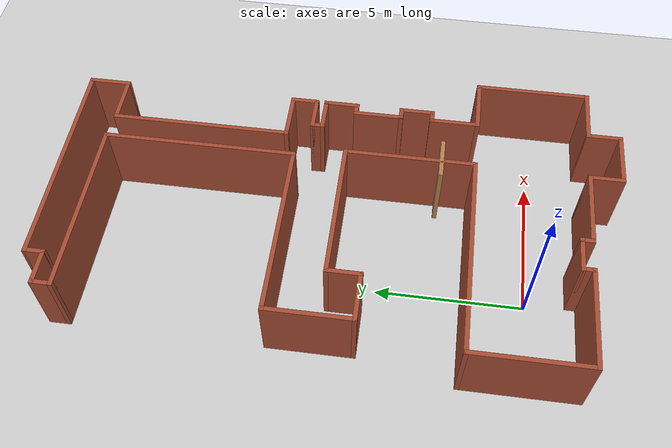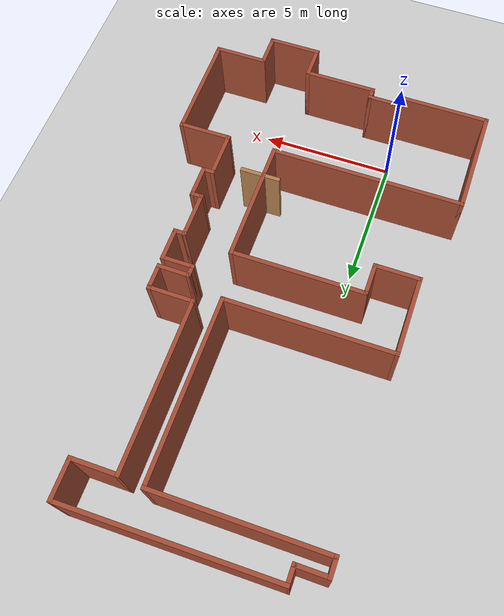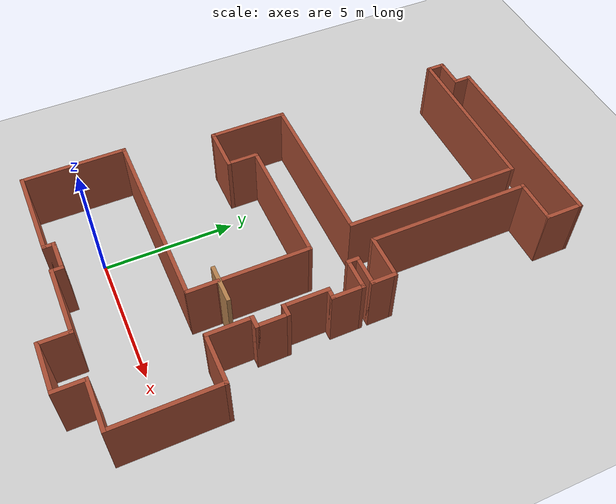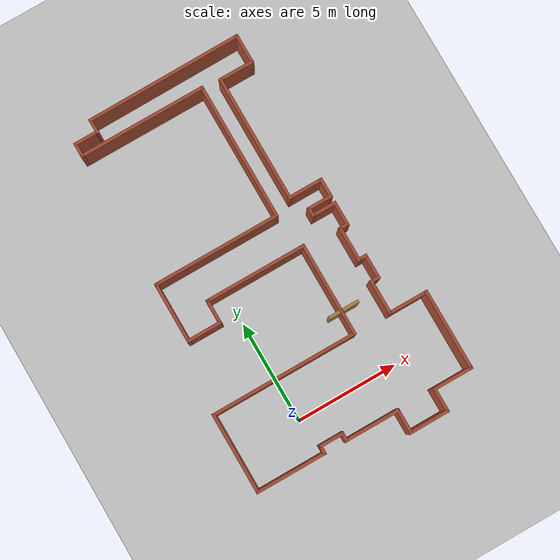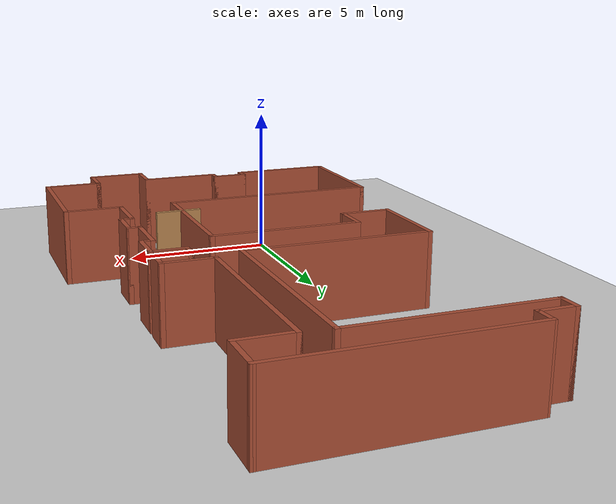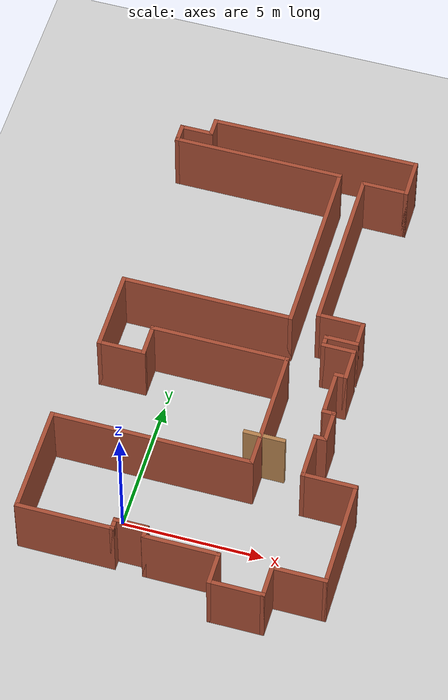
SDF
<sdf version="1.7">
 <world name="default">
  <light name="sun" type="directional">
   <pose>0 0 10 0 -0 0</pose>
   <diffuse>0.8 0.8 0.8 1</diffuse>
   <specular>0.2 0.2 0.2 1</specular>
   <attenuation>
    <range>1000</range>
    <constant>0.9</constant>
    <linear>0.01</linear>
    <quadratic>0.001</quadratic>
   </attenuation>
   <direction>-0.5 0.1 -0.9</direction>
   <spot><inner_angle>0</inner_angle><outer_angle>0</outer_angle><falloff>0</falloff></spot>
  </light>
  <model name="ground_plane">
   <static>1</static>
   <link name="link">
    <collision name="collision">
     <geometry><plane><normal>0 0 1</normal><size>100 100</size></plane></geometry>
     <surface><friction><ode><mu>100</mu><mu2>50</mu2></ode></friction></surface>
    </collision>
    <visual name="visual">
     <cast_shadows>0</cast_shadows>
     <geometry><plane><normal>0 0 1</normal><size>100 100</size></plane></geometry>
     <material>
      <script><uri>file://media/materials/scripts/gazebo.material</uri><name>Gazebo/Grey</name></script>
     </material>
    </visual>
   </link>
  </model>
  <gravity>0 0 -9.8</gravity>
  <magnetic_field>6e-06 2.3e-05 -4.2e-05</magnetic_field>
  <atmosphere type="adiabatic"/>
  <physics type="ode">
   <max_step_size>0.001</max_step_size>
   <real_time_factor>1</real_time_factor>
   <real_time_update_rate>1000</real_time_update_rate>
  </physics>
  <scene><ambient>0.4 0.4 0.4 1</ambient><background>0.7 0.7 0.7 1</background><shadows>1</shadows></scene>
  <spherical_coordinates>
   <surface_model>EARTH_WGS84</surface_model>
   <latitude_deg>0</latitude_deg>
   <longitude_deg>0</longitude_deg>
   <elevation>0</elevation>
   <heading_deg>0</heading_deg>
  </spherical_coordinates>
  <model name="F1L3">
   <pose>2.25201 6.62424 0 0 -0 0</pose>
   <link name="Wall_0">
    <collision name="Wall_0_Collision">
     <geometry><box><size>4 0.15 2.5</size></box></geometry>
     <pose>0 0 1.25 0 -0 0</pose>
    </collision>
    <visual name="Wall_0_Visual">
     <pose>0 0 1.25 0 -0 0</pose>
     <geometry><box><size>4 0.15 2.5</size></box></geometry>
     <material>
      <script><uri>file://media/materials/scripts/gazebo.material</uri><name>Gazebo/Bricks</name></script>
      <ambient>1 1 1 1</ambient>
     </material>
     <meta><layer>0</layer></meta>
    </visual>
    <pose>-5.375 -6.47525 0 0 -0 -1.5708</pose>
   </link>
   <link name="Wall_1">
    <collision name="Wall_1_Collision">
     <geometry><box><size>3.5 0.15 2.5</size></box></geometry>
     <pose>0 0 1.25 0 -0 0</pose>
    </collision>
    <visual name="Wall_1_Visual">
     <pose>0 0 1.25 0 -0 0</pose>
     <geometry><box><size>3.5 0.15 2.5</size></box></geometry>
     <material>
      <script><uri>file://media/materials/scripts/gazebo.material</uri><name>Gazebo/Bricks</name></script>
      <ambient>1 1 1 1</ambient>
     </material>
     <meta><layer>0</layer></meta>
    </visual>
    <pose>-3.7 -8.40025 0 0 -0 0</pose>
   </link>
   <link name="Wall_12">
    <collision name="Wall_12_Collision">
     <geometry><box><size>1.25 0.15 2.5</size></box></geometry>
     <pose>0 0 1.25 0 -0 0</pose>
    </collision>
    <visual name="Wall_12_Visual">
     <pose>0 0 1.25 0 -0 0</pose>
     <geometry><box><size>1.25 0.15 2.5</size></box></geometry>
     <material>
      <script><uri>file://media/materials/scripts/gazebo.material</uri><name>Gazebo/Bricks</name></script>
      <ambient>1 1 1 1</ambient>
     </material>
     <meta><layer>0</layer></meta>
    </visual>
    <pose>-1.475 -8.05025 0 0 -0 0</pose>
   </link>
   <link name="Wall_13">
    <collision name="Wall_13_Collision">
     <geometry><box><size>0.5 0.15 2.5</size></box></geometry>
     <pose>0 0 1.25 0 -0 0</pose>
    </collision>
    <visual name="Wall_13_Visual">
     <pose>0 0 1.25 0 -0 0</pose>
     <geometry><box><size>0.5 0.15 2.5</size></box></geometry>
     <material>
      <script><uri>file://media/materials/scripts/gazebo.material</uri><name>Gazebo/Bricks</name></script>
      <ambient>1 1 1 1</ambient>
     </material>
     <meta><layer>0</layer></meta>
    </visual>
    <pose>-0.925 -8.22525 0 0 -0 -1.5708</pose>
   </link>
   <link name="Wall_14">
    <collision name="Wall_14_Collision">
     <geometry><box><size>2.75 0.15 2.5</size></box></geometry>
     <pose>0 0 1.25 0 -0 0</pose>
    </collision>
    <visual name="Wall_14_Visual">
     <pose>0 0 1.25 0 -0 0</pose>
     <geometry><box><size>2.75 0.15 2.5</size></box></geometry>
     <material>
      <script><uri>file://media/materials/scripts/gazebo.material</uri><name>Gazebo/Bricks</name></script>
      <ambient>1 1 1 1</ambient>
     </material>
     <meta><layer>0</layer></meta>
    </visual>
    <pose>0.375 -8.40025 0 0 -0 0</pose>
   </link>
   <link name="Wall_15">
    <collision name="Wall_15_Collision">
     <geometry><box><size>1.25 0.15 2.5</size></box></geometry>
     <pose>0 0 1.25 0 -0 0</pose>
    </collision>
    <visual name="Wall_15_Visual">
     <pose>0 0 1.25 0 -0 0</pose>
     <geometry><box><size>1.25 0.15 2.5</size></box></geometry>
     <material>
      <script><uri>file://media/materials/scripts/gazebo.material</uri><name>Gazebo/Bricks</name></script>
      <ambient>1 1 1 1</ambient>
     </material>
     <meta><layer>0</layer></meta>
    </visual>
    <pose>1.675 -8.95025 0 0 -0 -1.5708</pose>
   </link>
   <link name="Wall_16">
    <collision name="Wall_16_Collision">
     <geometry><box><size>2 0.15 2.5</size></box></geometry>
     <pose>0 0 1.25 0 -0 0</pose>
    </collision>
    <visual name="Wall_16_Visual">
     <pose>0 0 1.25 0 -0 0</pose>
     <geometry><box><size>2 0.15 2.5</size></box></geometry>
     <material>
      <script><uri>file://media/materials/scripts/gazebo.material</uri><name>Gazebo/Bricks</name></script>
      <ambient>1 1 1 1</ambient>
     </material>
     <meta><layer>0</layer></meta>
    </visual>
    <pose>2.6 -9.50025 0 0 -0 0</pose>
   </link>
   <link name="Wall_17">
    <collision name="Wall_17_Collision">
     <geometry><box><size>1.25 0.15 2.5</size></box></geometry>
     <pose>0 0 1.25 0 -0 0</pose>
    </collision>
    <visual name="Wall_17_Visual">
     <pose>0 0 1.25 0 -0 0</pose>
     <geometry><box><size>1.25 0.15 2.5</size></box></geometry>
     <material>
      <script><uri>file://media/materials/scripts/gazebo.material</uri><name>Gazebo/Bricks</name></script>
      <ambient>1 1 1 1</ambient>
     </material>
     <meta><layer>0</layer></meta>
    </visual>
    <pose>3.525 -8.95025 0 0 -0 1.5708</pose>
   </link>
   <link name="Wall_18">
    <collision name="Wall_18_Collision">
     <geometry><box><size>2 0.15 2.5</size></box></geometry>
     <pose>0 0 1.25 0 -0 0</pose>
    </collision>
    <visual name="Wall_18_Visual">
     <pose>0 0 1.25 0 -0 0</pose>
     <geometry><box><size>2 0.15 2.5</size></box></geometry>
     <material>
      <script><uri>file://media/materials/scripts/gazebo.material</uri><name>Gazebo/Bricks</name></script>
      <ambient>1 1 1 1</ambient>
     </material>
     <meta><layer>0</layer></meta>
    </visual>
    <pose>4.45 -8.40025 0 0 -0 0</pose>
   </link>
   <link name="Wall_19">
    <collision name="Wall_19_Collision">
     <geometry><box><size>4 0.15 2.5</size></box></geometry>
     <pose>0 0 1.25 0 -0 0</pose>
    </collision>
    <visual name="Wall_19_Visual">
     <pose>0 0 1.25 0 -0 0</pose>
     <geometry><box><size>4 0.15 2.5</size></box></geometry>
     <material>
      <script><uri>file://media/materials/scripts/gazebo.material</uri><name>Gazebo/Bricks</name></script>
      <ambient>1 1 1 1</ambient>
     </material>
     <meta><layer>0</layer></meta>
    </visual>
    <pose>5.375 -6.47525 0 0 -0 1.5708</pose>
   </link>
   <link name="Wall_20">
    <collision name="Wall_20_Collision">
     <geometry><box><size>2 0.15 2.5</size></box></geometry>
     <pose>0 0 1.25 0 -0 0</pose>
    </collision>
    <visual name="Wall_20_Visual">
     <pose>0 0 1.25 0 -0 0</pose>
     <geometry><box><size>2 0.15 2.5</size></box></geometry>
     <material>
      <script><uri>file://media/materials/scripts/gazebo.material</uri><name>Gazebo/Bricks</name></script>
      <ambient>1 1 1 1</ambient>
     </material>
     <meta><layer>0</layer></meta>
    </visual>
    <pose>4.45 -4.55025 0 0 -0 3.14159</pose>
   </link>
   <link name="Wall_21">
    <collision name="Wall_21_Collision">
     <geometry><box><size>1.75 0.15 2.5</size></box></geometry>
     <pose>0 0 1.25 0 -0 0</pose>
    </collision>
    <visual name="Wall_21_Visual">
     <pose>0 0 1.25 0 -0 0</pose>
     <geometry><box><size>1.75 0.15 2.5</size></box></geometry>
     <material>
      <script><uri>file://media/materials/scripts/gazebo.material</uri><name>Gazebo/Bricks</name></script>
      <ambient>1 1 1 1</ambient>
     </material>
     <meta><layer>0</layer></meta>
    </visual>
    <pose>3.525 -3.75025 0 0 -0 1.5708</pose>
   </link>
   <link name="Wall_22">
    <collision name="Wall_22_Collision">
     <geometry><box><size>0.5 0.15 2.5</size></box></geometry>
     <pose>0 0 1.25 0 -0 0</pose>
    </collision>
    <visual name="Wall_22_Visual">
     <pose>0 0 1.25 0 -0 0</pose>
     <geometry><box><size>0.5 0.15 2.5</size></box></geometry>
     <material>
      <script><uri>file://media/materials/scripts/gazebo.material</uri><name>Gazebo/Bricks</name></script>
      <ambient>1 1 1 1</ambient>
     </material>
     <meta><layer>0</layer></meta>
    </visual>
    <pose>3.7 -2.95025 0 0 -0 0</pose>
   </link>
   <link name="Wall_23">
    <collision name="Wall_23_Collision">
     <geometry><box><size>1.25 0.15 2.5</size></box></geometry>
     <pose>0 0 1.25 0 -0 0</pose>
    </collision>
    <visual name="Wall_23_Visual">
     <pose>0 0 1.25 0 -0 0</pose>
     <geometry><box><size>1.25 0.15 2.5</size></box></geometry>
     <material>
      <script><uri>file://media/materials/scripts/gazebo.material</uri><name>Gazebo/Bricks</name></script>
      <ambient>1 1 1 1</ambient>
     </material>
     <meta><layer>0</layer></meta>
    </visual>
    <pose>3.875 -2.40025 0 0 -0 1.5708</pose>
   </link>
   <link name="Wall_24">
    <collision name="Wall_24_Collision">
     <geometry><box><size>0.5 0.15 2.5</size></box></geometry>
     <pose>0 0 1.25 0 -0 0</pose>
    </collision>
    <visual name="Wall_24_Visual">
     <pose>0 0 1.25 0 -0 0</pose>
     <geometry><box><size>0.5 0.15 2.5</size></box></geometry>
     <material>
      <script><uri>file://media/materials/scripts/gazebo.material</uri><name>Gazebo/Bricks</name></script>
      <ambient>1 1 1 1</ambient>
     </material>
     <meta><layer>0</layer></meta>
    </visual>
    <pose>3.7 -1.85025 0 0 -0 3.14159</pose>
   </link>
   <link name="Wall_25">
    <collision name="Wall_25_Collision">
     <geometry><box><size>1.75 0.15 2.5</size></box></geometry>
     <pose>0 0 1.25 0 -0 0</pose>
    </collision>
    <visual name="Wall_25_Visual">
     <pose>0 0 1.25 0 -0 0</pose>
     <geometry><box><size>1.75 0.15 2.5</size></box></geometry>
     <material>
      <script><uri>file://media/materials/scripts/gazebo.material</uri><name>Gazebo/Bricks</name></script>
      <ambient>1 1 1 1</ambient>
     </material>
     <meta><layer>0</layer></meta>
    </visual>
    <pose>3.525 -1.05025 0 0 -0 1.5708</pose>
   </link>
   <link name="Wall_26">
    <collision name="Wall_26_Collision">
     <geometry><box><size>0.5 0.15 2.5</size></box></geometry>
     <pose>0 0 1.25 0 -0 0</pose>
    </collision>
    <visual name="Wall_26_Visual">
     <pose>0 0 1.25 0 -0 0</pose>
     <geometry><box><size>0.5 0.15 2.5</size></box></geometry>
     <material>
      <script><uri>file://media/materials/scripts/gazebo.material</uri><name>Gazebo/Bricks</name></script>
      <ambient>1 1 1 1</ambient>
     </material>
     <meta><layer>0</layer></meta>
    </visual>
    <pose>3.7 -0.250249 0 0 -0 0</pose>
   </link>
   <link name="Wall_27">
    <collision name="Wall_27_Collision">
     <geometry><box><size>1.25 0.15 2.5</size></box></geometry>
     <pose>0 0 1.25 0 -0 0</pose>
    </collision>
    <visual name="Wall_27_Visual">
     <pose>0 0 1.25 0 -0 0</pose>
     <geometry><box><size>1.25 0.15 2.5</size></box></geometry>
     <material>
      <script><uri>file://media/materials/scripts/gazebo.material</uri><name>Gazebo/Bricks</name></script>
      <ambient>1 1 1 1</ambient>
     </material>
     <meta><layer>0</layer></meta>
    </visual>
    <pose>3.875 0.299751 0 0 -0 1.5708</pose>
   </link>
   <link name="Wall_28">
    <collision name="Wall_28_Collision">
     <geometry><box><size>1.25 0.15 2.5</size></box></geometry>
     <pose>0 0 1.25 0 -0 0</pose>
    </collision>
    <visual name="Wall_28_Visual">
     <pose>0 0 1.25 0 -0 0</pose>
     <geometry><box><size>1.25 0.15 2.5</size></box></geometry>
     <material>
      <script><uri>file://media/materials/scripts/gazebo.material</uri><name>Gazebo/Bricks</name></script>
      <ambient>1 1 1 1</ambient>
     </material>
     <meta><layer>0</layer></meta>
    </visual>
    <pose>3.325 0.849751 0 0 -0 3.14159</pose>
   </link>
   <link name="Wall_30">
    <collision name="Wall_30_Collision">
     <geometry><box><size>7.25 0.15 2.5</size></box></geometry>
     <pose>0 0 1.25 0 -0 0</pose>
    </collision>
    <visual name="Wall_30_Visual">
     <pose>0 0 1.25 0 -0 0</pose>
     <geometry><box><size>7.25 0.15 2.5</size></box></geometry>
     <material>
      <script><uri>file://media/materials/scripts/gazebo.material</uri><name>Gazebo/Bricks</name></script>
      <ambient>1 1 1 1</ambient>
     </material>
     <meta><layer>0</layer></meta>
    </visual>
    <pose>-1.825 -4.55025 0 0 -0 0</pose>
   </link>
   <link name="Wall_31">
    <collision name="Wall_31_Collision">
     <geometry><box><size>1.25 0.15 2.5</size></box></geometry>
     <pose>0 0 1.25 0 -0 0</pose>
    </collision>
    <visual name="Wall_31_Visual">
     <pose>0 0 1.25 0 -0 0</pose>
     <geometry><box><size>1.25 0.15 2.5</size></box></geometry>
     <material>
      <script><uri>file://media/materials/scripts/gazebo.material</uri><name>Gazebo/Bricks</name></script>
      <ambient>1 1 1 1</ambient>
     </material>
     <meta><layer>0</layer></meta>
    </visual>
    <pose>1.725 -4.00025 0 0 -0 1.5708</pose>
   </link>
   <link name="Wall_42">
    <collision name="Wall_42_Collision">
     <geometry><box><size>3.5 0.15 2.5</size></box></geometry>
     <pose>0 0 1.25 0 -0 0</pose>
    </collision>
    <visual name="Wall_42_Visual">
     <pose>0 0 1.25 0 -0 0</pose>
     <geometry><box><size>3.5 0.15 2.5</size></box></geometry>
     <material>
      <script><uri>file://media/materials/scripts/gazebo.material</uri><name>Gazebo/Bricks</name></script>
      <ambient>1 1 1 1</ambient>
     </material>
     <meta><layer>0</layer></meta>
    </visual>
    <pose>1.725 -1.77525 0 0 -0 1.5708</pose>
   </link>
   <link name="Wall_43">
    <collision name="Wall_43_Collision">
     <geometry><box><size>5 0.15 2.5</size></box></geometry>
     <pose>0 0 1.25 0 -0 0</pose>
    </collision>
    <visual name="Wall_43_Visual">
     <pose>0 0 1.25 0 -0 0</pose>
     <geometry><box><size>5 0.15 2.5</size></box></geometry>
     <material>
      <script><uri>file://media/materials/scripts/gazebo.material</uri><name>Gazebo/Bricks</name></script>
      <ambient>1 1 1 1</ambient>
     </material>
     <meta><layer>0</layer></meta>
    </visual>
    <pose>-0.7 -0.100249 0 0 -0 3.14159</pose>
   </link>
   <link name="Wall_44">
    <collision name="Wall_44_Collision">
     <geometry><box><size>1.25 0.15 2.5</size></box></geometry>
     <pose>0 0 1.25 0 -0 0</pose>
    </collision>
    <visual name="Wall_44_Visual">
     <pose>0 0 1.25 0 -0 0</pose>
     <geometry><box><size>1.25 0.15 2.5</size></box></geometry>
     <material>
      <script><uri>file://media/materials/scripts/gazebo.material</uri><name>Gazebo/Bricks</name></script>
      <ambient>1 1 1 1</ambient>
     </material>
     <meta><layer>0</layer></meta>
    </visual>
    <pose>-3.125 -0.650249 0 0 -0 -1.5708</pose>
   </link>
   <link name="Wall_45">
    <collision name="Wall_45_Collision">
     <geometry><box><size>1.75 0.15 2.5</size></box></geometry>
     <pose>0 0 1.25 0 -0 0</pose>
    </collision>
    <visual name="Wall_45_Visual">
     <pose>0 0 1.25 0 -0 0</pose>
     <geometry><box><size>1.75 0.15 2.5</size></box></geometry>
     <material>
      <script><uri>file://media/materials/scripts/gazebo.material</uri><name>Gazebo/Bricks</name></script>
      <ambient>1 1 1 1</ambient>
     </material>
     <meta><layer>0</layer></meta>
    </visual>
    <pose>-3.925 -1.20025 0 0 -0 3.14159</pose>
   </link>
   <link name="Wall_46">
    <collision name="Wall_46_Collision">
     <geometry><box><size>3 0.15 2.5</size></box></geometry>
     <pose>0 0 1.25 0 -0 0</pose>
    </collision>
    <visual name="Wall_46_Visual">
     <pose>0 0 1.25 0 -0 0</pose>
     <geometry><box><size>3 0.15 2.5</size></box></geometry>
     <material>
      <script><uri>file://media/materials/scripts/gazebo.material</uri><name>Gazebo/Bricks</name></script>
      <ambient>1 1 1 1</ambient>
     </material>
     <meta><layer>0</layer></meta>
    </visual>
    <pose>-4.725 0.224751 0 0 -0 1.5708</pose>
   </link>
   <link name="Wall_47">
    <collision name="Wall_47_Collision">
     <geometry><box><size>6.25 0.15 2.5</size></box></geometry>
     <pose>0 0 1.25 0 -0 0</pose>
    </collision>
    <visual name="Wall_47_Visual">
     <pose>0 0 1.25 0 -0 0</pose>
     <geometry><box><size>6.25 0.15 2.5</size></box></geometry>
     <material>
      <script><uri>file://media/materials/scripts/gazebo.material</uri><name>Gazebo/Bricks</name></script>
      <ambient>1 1 1 1</ambient>
     </material>
     <meta><layer>0</layer></meta>
    </visual>
    <pose>-1.675 1.64975 0 0 -0 0</pose>
   </link>
   <link name="Wall_52">
    <collision name="Wall_52_Collision">
     <geometry><box><size>0.5 0.15 2.5</size></box></geometry>
     <pose>0 0 1.25 0 -0 0</pose>
    </collision>
    <visual name="Wall_52_Visual">
     <pose>0 0 1.25 0 -0 0</pose>
     <geometry><box><size>0.5 0.15 2.5</size></box></geometry>
     <material>
      <script><uri>file://media/materials/scripts/gazebo.material</uri><name>Gazebo/Bricks</name></script>
      <ambient>1 1 1 1</ambient>
     </material>
     <meta><layer>0</layer></meta>
    </visual>
    <pose>2.775 1.02475 0 0 -0 1.5708</pose>
   </link>
   <link name="Wall_53">
    <collision name="Wall_53_Collision">
     <geometry><box><size>1.25 0.15 2.5</size></box></geometry>
     <pose>0 0 1.25 0 -0 0</pose>
    </collision>
    <visual name="Wall_53_Visual">
     <pose>0 0 1.25 0 -0 0</pose>
     <geometry><box><size>1.25 0.15 2.5</size></box></geometry>
     <material>
      <script><uri>file://media/materials/scripts/gazebo.material</uri><name>Gazebo/Bricks</name></script>
      <ambient>1 1 1 1</ambient>
     </material>
     <meta><layer>0</layer></meta>
    </visual>
    <pose>3.325 1.19975 0 0 -0 0</pose>
   </link>
   <link name="Wall_56">
    <collision name="Wall_56_Collision">
     <geometry><box><size>1 0.15 2.5</size></box></geometry>
     <pose>0 0 1.25 0 -0 0</pose>
    </collision>
    <visual name="Wall_56_Visual">
     <pose>0 0 1.25 0 -0 0</pose>
     <geometry><box><size>1 0.15 2.5</size></box></geometry>
     <material>
      <script><uri>file://media/materials/scripts/gazebo.material</uri><name>Gazebo/Bricks</name></script>
      <ambient>1 1 1 1</ambient>
     </material>
     <meta><layer>0</layer></meta>
    </visual>
    <pose>3.875 1.62475 0 0 -0 1.5708</pose>
   </link>
   <link name="Wall_60">
    <collision name="Wall_60_Collision">
     <geometry><box><size>1.75 0.15 2.5</size></box></geometry>
     <pose>0 0 1.25 0 -0 0</pose>
    </collision>
    <visual name="Wall_60_Visual">
     <pose>0 0 1.25 0 -0 0</pose>
     <geometry><box><size>1.75 0.15 2.5</size></box></geometry>
     <material>
      <script><uri>file://media/materials/scripts/gazebo.material</uri><name>Gazebo/Bricks</name></script>
      <ambient>1 1 1 1</ambient>
     </material>
     <meta><layer>0</layer></meta>
    </visual>
    <pose>3.075 2.04975 0 0 -0 3.14159</pose>
   </link>
   <link name="Wall_61">
    <collision name="Wall_61_Collision">
     <geometry><box><size>6.25 0.15 2.5</size></box></geometry>
     <pose>0 0 1.25 0 -0 0</pose>
    </collision>
    <visual name="Wall_61_Visual">
     <pose>0 0 1.25 0 -0 0</pose>
     <geometry><box><size>6.25 0.15 2.5</size></box></geometry>
     <material>
      <script><uri>file://media/materials/scripts/gazebo.material</uri><name>Gazebo/Bricks</name></script>
      <ambient>1 1 1 1</ambient>
     </material>
     <meta><layer>0</layer></meta>
    </visual>
    <pose>2.275 5.09975 0 0 -0 1.5708</pose>
   </link>
   <link name="Wall_62">
    <collision name="Wall_62_Collision">
     <geometry><box><size>1.75 0.15 2.5</size></box></geometry>
     <pose>0 0 1.25 0 -0 0</pose>
    </collision>
    <visual name="Wall_62_Visual">
     <pose>0 0 1.25 0 -0 0</pose>
     <geometry><box><size>1.75 0.15 2.5</size></box></geometry>
     <material>
      <script><uri>file://media/materials/scripts/gazebo.material</uri><name>Gazebo/Bricks</name></script>
      <ambient>1 1 1 1</ambient>
     </material>
     <meta><layer>0</layer></meta>
    </visual>
    <pose>3.075 8.14975 0 0 -0 0</pose>
   </link>
   <link name="Wall_66">
    <collision name="Wall_66_Collision">
     <geometry><box><size>6.75 0.15 2.5</size></box></geometry>
     <pose>0 0 1.25 0 -0 0</pose>
    </collision>
    <visual name="Wall_66_Visual">
     <pose>0 0 1.25 0 -0 0</pose>
     <geometry><box><size>6.75 0.15 2.5</size></box></geometry>
     <material>
      <script><uri>file://media/materials/scripts/gazebo.material</uri><name>Gazebo/Bricks</name></script>
      <ambient>1 1 1 1</ambient>
     </material>
     <meta><layer>0</layer></meta>
    </visual>
    <pose>1.375 4.94975 0 0 -0 1.5708</pose>
   </link>
   <link name="Wall_73">
    <collision name="Wall_73_Collision">
     <geometry><box><size>6.25 0.15 2.5</size></box></geometry>
     <pose>0 0 1.25 0 -0 0</pose>
    </collision>
    <visual name="Wall_73_Visual">
     <pose>0 0 1.25 0 -0 0</pose>
     <geometry><box><size>6.25 0.15 2.5</size></box></geometry>
     <material>
      <script><uri>file://media/materials/scripts/gazebo.material</uri><name>Gazebo/Bricks</name></script>
      <ambient>1 1 1 1</ambient>
     </material>
     <meta><layer>0</layer></meta>
    </visual>
    <pose>-1.675 8.24975 0 0 -0 3.14159</pose>
   </link>
   <link name="Wall_74">
    <collision name="Wall_74_Collision">
     <geometry><box><size>0.75 0.15 2.5</size></box></geometry>
     <pose>0 0 1.25 0 -0 0</pose>
    </collision>
    <visual name="Wall_74_Visual">
     <pose>0 0 1.25 0 -0 0</pose>
     <geometry><box><size>0.75 0.15 2.5</size></box></geometry>
     <material>
      <script><uri>file://media/materials/scripts/gazebo.material</uri><name>Gazebo/Bricks</name></script>
      <ambient>1 1 1 1</ambient>
     </material>
     <meta><layer>0</layer></meta>
    </visual>
    <pose>-4.725 8.54975 0 0 -0 1.5708</pose>
   </link>
   <link name="Wall_75">
    <collision name="Wall_75_Collision">
     <geometry><box><size>1.25 0.15 2.5</size></box></geometry>
     <pose>0 0 1.25 0 -0 0</pose>
    </collision>
    <visual name="Wall_75_Visual">
     <pose>0 0 1.25 0 -0 0</pose>
     <geometry><box><size>1.25 0.15 2.5</size></box></geometry>
     <material>
      <script><uri>file://media/materials/scripts/gazebo.material</uri><name>Gazebo/Bricks</name></script>
      <ambient>1 1 1 1</ambient>
     </material>
     <meta><layer>0</layer></meta>
    </visual>
    <pose>-4.175 8.84975 0 0 -0 0</pose>
   </link>
   <link name="Wall_76">
    <collision name="Wall_76_Collision">
     <geometry><box><size>0.75 0.15 2.5</size></box></geometry>
     <pose>0 0 1.25 0 -0 0</pose>
    </collision>
    <visual name="Wall_76_Visual">
     <pose>0 0 1.25 0 -0 0</pose>
     <geometry><box><size>0.75 0.15 2.5</size></box></geometry>
     <material>
      <script><uri>file://media/materials/scripts/gazebo.material</uri><name>Gazebo/Bricks</name></script>
      <ambient>1 1 1 1</ambient>
     </material>
     <meta><layer>0</layer></meta>
    </visual>
    <pose>-3.625 9.14975 0 0 -0 1.5708</pose>
   </link>
   <link name="Wall_79">
    <collision name="Wall_79_Collision">
     <geometry><box><size>1.5 0.15 2.5</size></box></geometry>
     <pose>0 0 1.25 0 -0 0</pose>
    </collision>
    <visual name="Wall_79_Visual">
     <pose>0 0 1.25 0 -0 0</pose>
     <geometry><box><size>1.5 0.15 2.5</size></box></geometry>
     <material>
      <script><uri>file://media/materials/scripts/gazebo.material</uri><name>Gazebo/Bricks</name></script>
      <ambient>1 1 1 1</ambient>
     </material>
     <meta><layer>0</layer></meta>
    </visual>
    <pose>3.875 8.82475 0 0 -0 1.5708</pose>
   </link>
   <link name="Wall_80">
    <collision name="Wall_80_Collision">
     <geometry><box><size>7.65017 0.15 2.5</size></box></geometry>
     <pose>0 0 1.25 0 -0 0</pose>
    </collision>
    <visual name="Wall_80_Visual">
     <pose>0 0 1.25 0 -0 0</pose>
     <geometry><box><size>7.65017 0.15 2.5</size></box></geometry>
     <material>
      <script><uri>file://media/materials/scripts/gazebo.material</uri><name>Gazebo/Bricks</name></script>
      <ambient>1 1 1 1</ambient>
     </material>
     <meta><layer>0</layer></meta>
    </visual>
    <pose>0.125 9.47475 0 0 -0 -3.13493</pose>
   </link>
   <link name="Wall_82">
    <collision name="Wall_82_Collision">
     <geometry><box><size>1.5 0.15 2.5</size></box></geometry>
     <pose>0 0 1.25 0 -0 0</pose>
    </collision>
    <visual name="Wall_82_Visual">
     <pose>0 0 1.25 0 -0 0</pose>
     <geometry><box><size>1.5 0.15 2.5</size></box></geometry>
     <material>
      <script><uri>file://media/materials/scripts/gazebo.material</uri><name>Gazebo/Wood</name></script>
      <ambient>1 1 1 1</ambient>
     </material>
     <meta><layer>0</layer></meta>
    </visual>
    <pose>1.85187 -3.40929 0 0 -0 3.14159</pose>
   </link>
   <link name="Wall_9">
    <collision name="Wall_9_Collision">
     <geometry><box><size>0.5 0.15 2.5</size></box></geometry>
     <pose>0 0 1.25 0 -0 0</pose>
    </collision>
    <visual name="Wall_9_Visual">
     <pose>0 0 1.25 0 -0 0</pose>
     <geometry><box><size>0.5 0.15 2.5</size></box></geometry>
     <material>
      <script><uri>file://media/materials/scripts/gazebo.material</uri><name>Gazebo/Bricks</name></script>
      <ambient>1 1 1 1</ambient>
     </material>
     <meta><layer>0</layer></meta>
    </visual>
    <pose>-2.025 -8.22525 0 0 -0 1.5708</pose>
   </link>
   <static>1</static>
  </model>
 </world>
</sdf>
